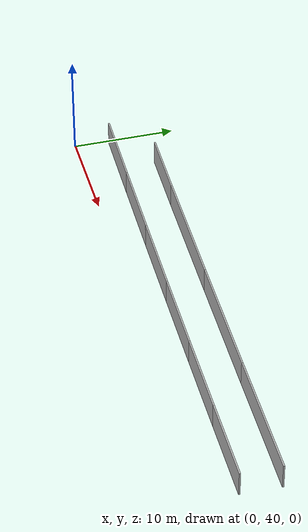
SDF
<?xml version="1.0" ?>
<sdf version="1.6">
  <model name="sps_4201">
    <pose frame="">0 0 0 0 -0 0</pose>
    <static>1</static>
    <self_collide>0</self_collide>
    <allow_auto_disable>0</allow_auto_disable>
    <link name="Wall2644">
      <kinematic>0</kinematic>
      <gravity>1</gravity>
      <self_collide>0</self_collide>
      <collision name="collision">
        <geometry>
          <box>
            <size>7.07608 0.15 2.5</size>
          </box>
        </geometry>
        <pose frame="">0 0 0 0 -0 0</pose>
      </collision>
      <visual name="visual">
        <geometry>
          <box>
            <size>7.07608 0.15 2.5</size>
          </box>
        </geometry>
        <pose frame="">0 0 0 0 -0 0</pose>
        <cast_shadows>1</cast_shadows>
        <transparency>0.0</transparency>
      </visual>
      <pose frame="">8.18514 46.9374 1.25 0 -0 3.11205</pose>
    </link>
    <link name="Wall8917">
      <kinematic>0</kinematic>
      <gravity>1</gravity>
      <self_collide>0</self_collide>
      <collision name="collision">
        <geometry>
          <box>
            <size>12.7911 0.15 2.5</size>
          </box>
        </geometry>
        <pose frame="">0 0 0 0 -0 0</pose>
      </collision>
      <visual name="visual">
        <geometry>
          <box>
            <size>12.7911 0.15 2.5</size>
          </box>
        </geometry>
        <pose frame="">0 0 0 0 -0 0</pose>
        <cast_shadows>1</cast_shadows>
        <transparency>0.0</transparency>
      </visual>
      <pose frame="">18.1153 46.6799 1.25 0 0 -0.0239276</pose>
    </link>
    <link name="Wall8918">
      <kinematic>0</kinematic>
      <gravity>1</gravity>
      <self_collide>0</self_collide>
      <collision name="collision">
        <geometry>
          <box>
            <size>12.7912 0.15 2.5</size>
          </box>
        </geometry>
        <pose frame="">0 0 0 0 -0 0</pose>
      </collision>
      <visual name="visual">
        <geometry>
          <box>
            <size>12.7912 0.15 2.5</size>
          </box>
        </geometry>
        <pose frame="">0 0 0 0 -0 0</pose>
        <cast_shadows>1</cast_shadows>
        <transparency>0.0</transparency>
      </visual>
      <pose frame="">30.9032 46.3889 1.25 0 0 -0.0215791</pose>
    </link>
    <link name="Wall8919">
      <kinematic>0</kinematic>
      <gravity>1</gravity>
      <self_collide>0</self_collide>
      <collision name="collision">
        <geometry>
          <box>
            <size>12.7912 0.15 2.5</size>
          </box>
        </geometry>
        <pose frame="">0 0 0 0 -0 0</pose>
      </collision>
      <visual name="visual">
        <geometry>
          <box>
            <size>12.7912 0.15 2.5</size>
          </box>
        </geometry>
        <pose frame="">0 0 0 0 -0 0</pose>
        <cast_shadows>1</cast_shadows>
        <transparency>0.0</transparency>
      </visual>
      <pose frame="">43.6917 46.1281 1.25 0 0 -0.0192023</pose>
    </link>
    <link name="Wall9005">
      <kinematic>0</kinematic>
      <gravity>1</gravity>
      <self_collide>0</self_collide>
      <collision name="collision">
        <geometry>
          <box>
            <size>8.26182 0.15 2.5</size>
          </box>
        </geometry>
        <pose frame="">0 0 0 0 -0 0</pose>
      </collision>
      <visual name="visual">
        <geometry>
          <box>
            <size>8.26182 0.15 2.5</size>
          </box>
        </geometry>
        <pose frame="">0 0 0 0 -0 0</pose>
        <cast_shadows>1</cast_shadows>
        <transparency>0.0</transparency>
      </visual>
      <pose frame="">4.50896 43.2961 1.25 0 0 -0.0294365</pose>
    </link>
    <link name="Wall9006">
      <kinematic>0</kinematic>
      <gravity>1</gravity>
      <self_collide>0</self_collide>
      <collision name="collision">
        <geometry>
          <box>
            <size>8.26182 0.15 2.5</size>
          </box>
        </geometry>
        <pose frame="">0 0 0 0 -0 0</pose>
      </collision>
      <visual name="visual">
        <geometry>
          <box>
            <size>8.26182 0.15 2.5</size>
          </box>
        </geometry>
        <pose frame="">0 0 0 0 -0 0</pose>
        <cast_shadows>1</cast_shadows>
        <transparency>0.0</transparency>
      </visual>
      <pose frame="">12.7675 43.0626 1.25 0 0 -0.0270937</pose>
    </link>
    <link name="Wall9007">
      <kinematic>0</kinematic>
      <gravity>1</gravity>
      <self_collide>0</self_collide>
      <collision name="collision">
        <geometry>
          <box>
            <size>8.26168 0.15 2.5</size>
          </box>
        </geometry>
        <pose frame="">0 0 0 0 -0 0</pose>
      </collision>
      <visual name="visual">
        <geometry>
          <box>
            <size>8.26168 0.15 2.5</size>
          </box>
        </geometry>
        <pose frame="">0 0 0 0 -0 0</pose>
        <cast_shadows>1</cast_shadows>
        <transparency>0.0</transparency>
      </visual>
      <pose frame="">21.0265 42.8486 1.25 0 0 -0.0247219</pose>
    </link>
    <link name="Wall9008">
      <kinematic>0</kinematic>
      <gravity>1</gravity>
      <self_collide>0</self_collide>
      <collision name="collision">
        <geometry>
          <box>
            <size>8.26189 0.15 2.5</size>
          </box>
        </geometry>
        <pose frame="">0 0 0 0 -0 0</pose>
      </collision>
      <visual name="visual">
        <geometry>
          <box>
            <size>8.26189 0.15 2.5</size>
          </box>
        </geometry>
        <pose frame="">0 0 0 0 -0 0</pose>
        <cast_shadows>1</cast_shadows>
        <transparency>0.0</transparency>
      </visual>
      <pose frame="">29.2859 42.6541 1.25 0 0 -0.022364</pose>
    </link>
    <link name="Wall9009">
      <kinematic>0</kinematic>
      <gravity>1</gravity>
      <self_collide>0</self_collide>
      <collision name="collision">
        <geometry>
          <box>
            <size>8.26185 0.15 2.5</size>
          </box>
        </geometry>
        <pose frame="">0 0 0 0 -0 0</pose>
      </collision>
      <visual name="visual">
        <geometry>
          <box>
            <size>8.26185 0.15 2.5</size>
          </box>
        </geometry>
        <pose frame="">0 0 0 0 -0 0</pose>
        <cast_shadows>1</cast_shadows>
        <transparency>0.0</transparency>
      </visual>
      <pose frame="">37.546 42.4791 1.25 0 0 -0.0199995</pose>
    </link>
    <link name="Wall9010">
      <kinematic>0</kinematic>
      <gravity>1</gravity>
      <self_collide>0</self_collide>
      <collision name="collision">
        <geometry>
          <box>
            <size>8.26172 0.15 2.5</size>
          </box>
        </geometry>
        <pose frame="">0 0 0 0 -0 0</pose>
      </collision>
      <visual name="visual">
        <geometry>
          <box>
            <size>8.26172 0.15 2.5</size>
          </box>
        </geometry>
        <pose frame="">0 0 0 0 -0 0</pose>
        <cast_shadows>1</cast_shadows>
        <transparency>0.0</transparency>
      </visual>
      <pose frame="">45.8063 42.3236 1.25 0 0 -0.0176501</pose>
    </link>
  </model>
</sdf>
